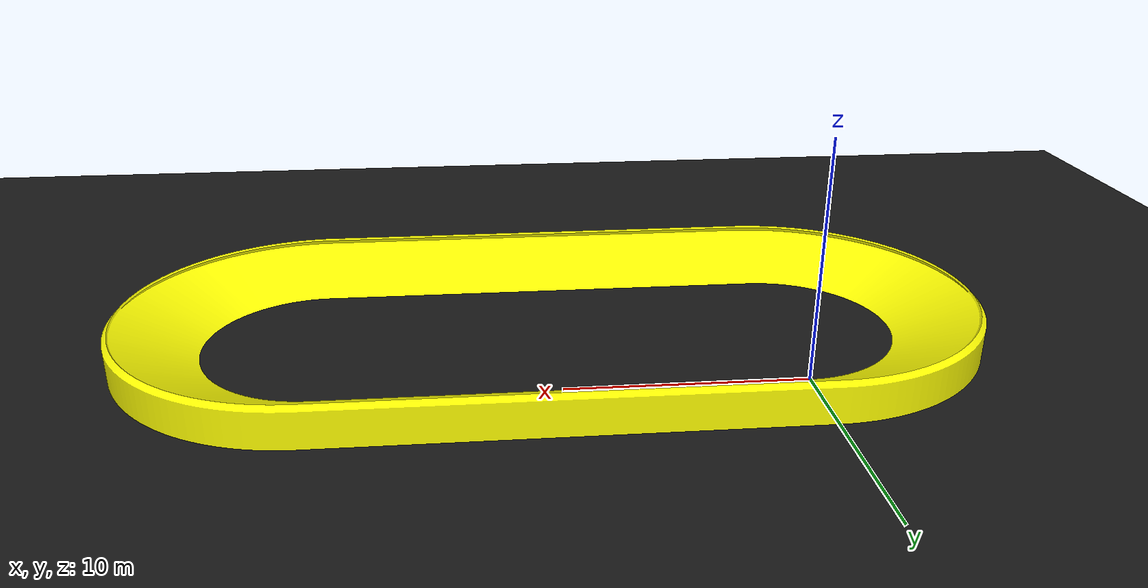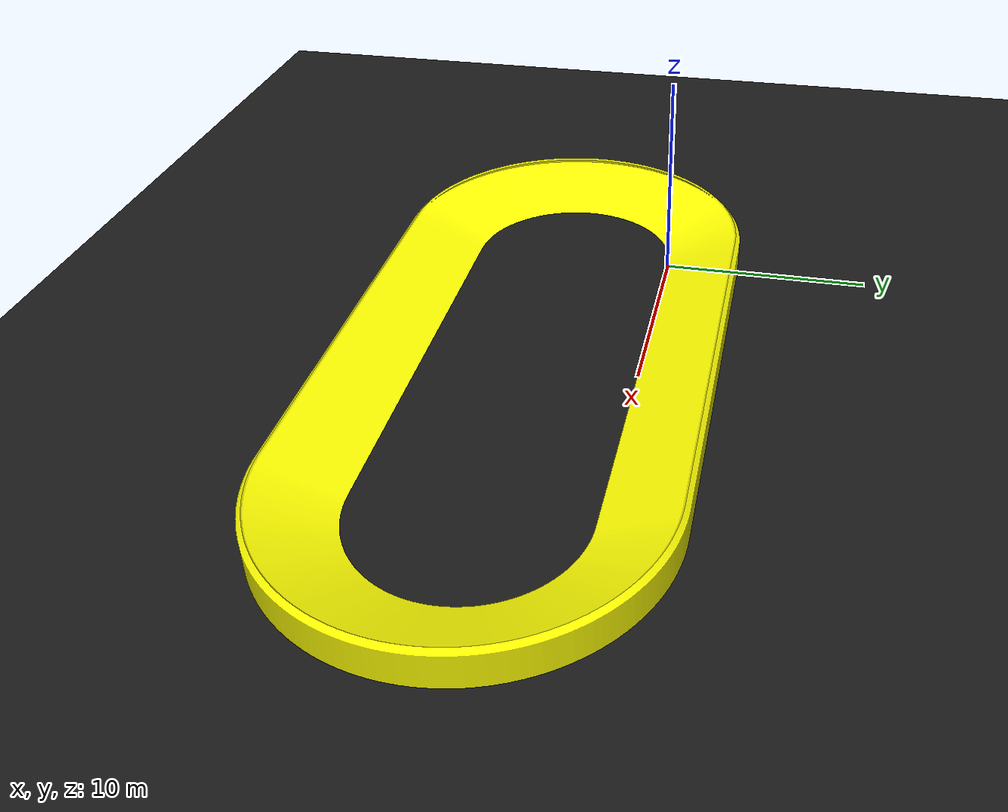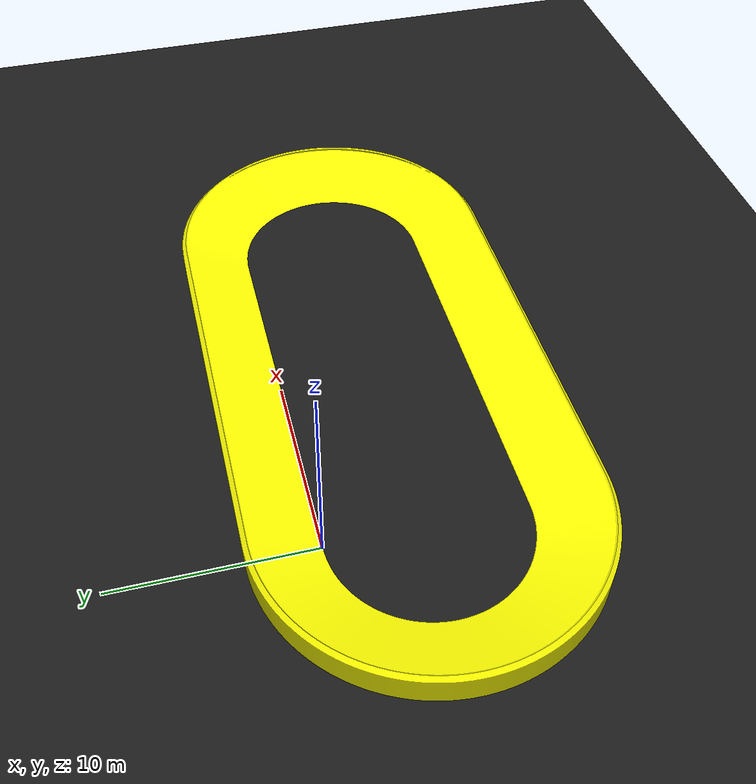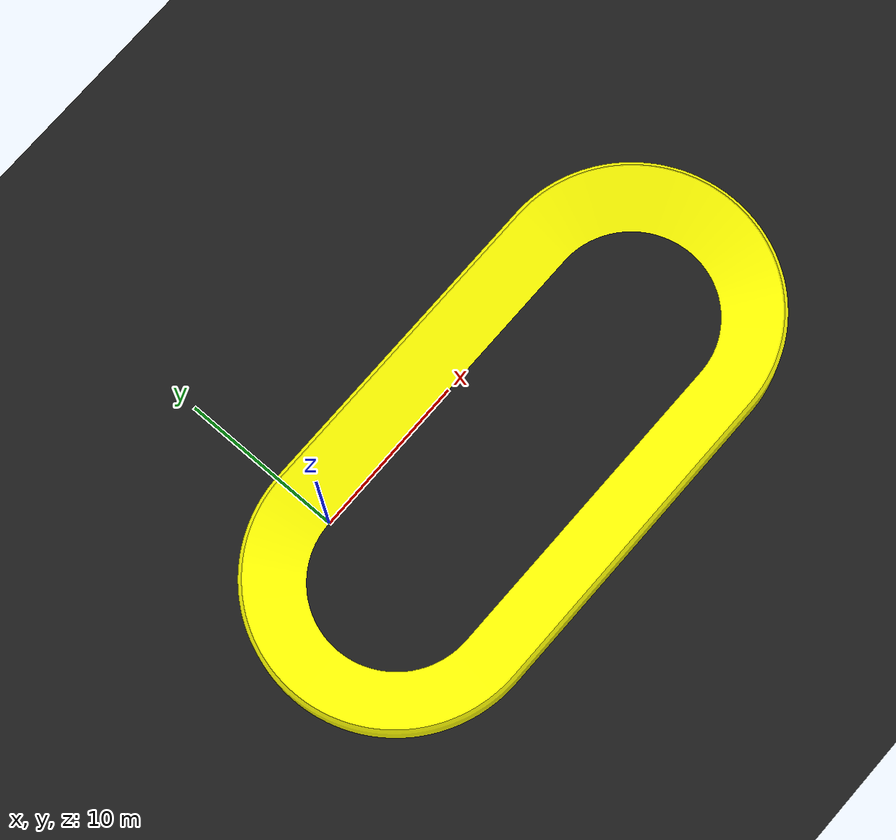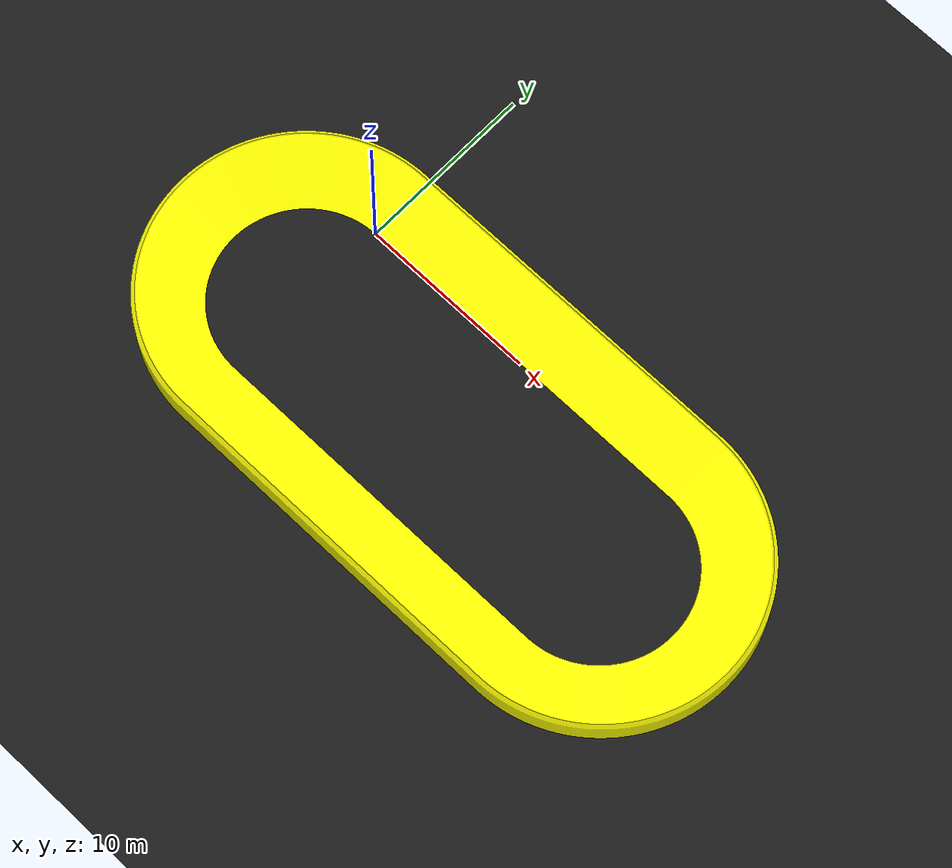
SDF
<?xml version="1.0"?>

<sdf version='1.9'>
  <world name='track'>

    <!-- PHYSICS -->
    <physics name="1ms" type="bullet">
        <max_step_size>0.001</max_step_size>
        <real_time_factor>1.0</real_time_factor>

        <bullet>
            <solver>
                <type>sequential_impulse</type>
                <iterations>100</iterations>
                <sor>1.5</sor>
                <split_impulse>true</split_impulse>
                <split_impulse_penetration_threshold>-0.001</split_impulse_penetration_threshold>
            </solver>
            <constraints>
                <cfm>0.0</cfm>
                <erp>0.99</erp>
                <contact_surface_layer>0.0</contact_surface_layer>
            </constraints>
        </bullet>

    </physics>

    <gravity>0 0 -9.8</gravity>
    <magnetic_field>6e-06 2.3e-05 -4.2e-05</magnetic_field>
    <atmosphere type='adiabatic'/>

    <!-- PLUGINS -->
    <plugin name='gz::sim::systems::Physics' filename='gz-sim-physics-system'/>
    <plugin name='gz::sim::systems::UserCommands' filename='gz-sim-user-commands-system'/>
    <plugin name='gz::sim::systems::SceneBroadcaster' filename='gz-sim-scene-broadcaster-system'/>

    <gui fullscreen='0'>
        <!-- 3D scene -->
        <plugin filename="MinimalScene" name="3D View">
            <gz-gui>
            <title>3D View</title>
            <property type="bool" key="showTitleBar">false</property>
            <property type="string" key="state">docked</property>
            </gz-gui>

            <engine>ogre2</engine>
            <scene>scene</scene>
            <ambient_light>0.4 0.4 0.4</ambient_light>
            <background_color>0.8 0.8 0.8</background_color>
            <camera_pose>-6 0 6 0 0.5 0</camera_pose>
        </plugin>

        <!-- Plugins that add functionality to the scene -->
        <plugin filename="EntityContextMenuPlugin" name="Entity context menu">
            <gz-gui>
            <property key="state" type="string">floating</property>
            <property key="width" type="double">5</property>
            <property key="height" type="double">5</property>
            <property key="showTitleBar" type="bool">false</property>
            </gz-gui>
        </plugin>
        <plugin filename="GzSceneManager" name="Scene Manager">
            <gz-gui>
            <property key="resizable" type="bool">false</property>
            <property key="width" type="double">5</property>
            <property key="height" type="double">5</property>
            <property key="state" type="string">floating</property>
            <property key="showTitleBar" type="bool">false</property>
            </gz-gui>
        </plugin>
        <plugin filename="InteractiveViewControl" name="Interactive view control">
            <gz-gui>
            <property key="resizable" type="bool">false</property>
            <property key="width" type="double">5</property>
            <property key="height" type="double">5</property>
            <property key="state" type="string">floating</property>
            <property key="showTitleBar" type="bool">false</property>
            </gz-gui>
        </plugin>
        <plugin filename="CameraTracking" name="Camera Tracking">
            <gz-gui>
            <property key="resizable" type="bool">false</property>
            <property key="width" type="double">5</property>
            <property key="height" type="double">5</property>
            <property key="state" type="string">floating</property>
            <property key="showTitleBar" type="bool">false</property>
            </gz-gui>
        </plugin>
        <plugin name='World control' filename='WorldControl'>
            <gz-gui>
                <title>World control</title>
                <property type='bool' key='showTitleBar'>0</property>
                <property type='bool' key='resizable'>0</property>
                <property type='double' key='height'>72</property>
                <property type='double' key='z'>1</property>
                <property type='string' key='state'>floating</property>
                <anchors target='3D View'>
                    <line own='left' target='left'/>
                    <line own='bottom' target='bottom'/>
                </anchors>
            </gz-gui>
            <play_pause>1</play_pause>
            <step>1</step>
            <start_paused>1</start_paused>
        </plugin>
        <plugin name='World stats' filename='WorldStats'>
            <gz-gui>
                <title>World stats</title>
                <property type='bool' key='showTitleBar'>0</property>
                <property type='bool' key='resizable'>0</property>
                <property type='double' key='height'>110</property>
                <property type='double' key='width'>290</property>
                <property type='double' key='z'>1</property>
                <property type='string' key='state'>floating</property>
                <anchors target='3D View'>
                    <line own='right' target='right'/>
                    <line own='bottom' target='bottom'/>
                </anchors>
            </gz-gui>
            <sim_time>1</sim_time>
            <real_time>1</real_time>
            <real_time_factor>1</real_time_factor>
            <iterations>1</iterations>
        </plugin>

        <plugin filename="VisualizeLidar" name="Visualize Lidar">
        </plugin>

        <plugin filename="ImageDisplay" name="Image Display">
        </plugin>

        <!-- Inspector -->
        <plugin filename="ComponentInspector" name="Component inspector">
            <ignition-gui>
            <property type="string" key="state">docked</property>
            </ignition-gui>
        </plugin>

        <!-- Entity tree -->
        <plugin filename="EntityTree" name="Entity tree">
            <ignition-gui>
            <property type="string" key="state">docked</property>
            </ignition-gui>
        </plugin>
    </gui>

    <!-- SENSORS -->

    <plugin
    filename="gz-sim-sensors-system"
    name="gz::sim::systems::Sensors">
    <render_engine>ogre2</render_engine>
    </plugin>

    <!-- AMBIENT -->

    <scene>
        <ambient>1 1 1 1</ambient>
        <background>0.8 0.8 0.8 1</background>
        <shadows>1</shadows>
    </scene>
    <light name='sun' type='directional'>
        <cast_shadows>1</cast_shadows>
        <pose>0 0 10 0 0 0</pose>
        <diffuse>0.8 0.8 0.8 1</diffuse>
        <specular>0.8 0.8 0.8 1</specular>
        <attenuation>
            <range>1000</range>
            <constant>0.9</constant>
            <linear>0.01</linear>
            <quadratic>0.001</quadratic>
        </attenuation>
        <direction>-0.5 0.1 -0.9</direction>
    </light>

    <model name='ground_plane'>
        <static>true</static>
        <link name='link'>
            <collision name='collision'>
                <geometry>
                    <plane>
                    <normal>0 0 1</normal>
                    <size>100 100</size>
                    </plane>
                </geometry>

                <surface>
                    <friction>
                        <dart/>
                    </friction>
                    <bounce/>
                    <contact/>
                </surface>
            </collision>

            <visual name='visual'>
                <geometry>
                    <plane>
                    <normal>0 0 1</normal>
                    <size>100 100</size>
                    </plane>
                </geometry>
                <material>
                    <ambient>0.1 0.1 0.1 1</ambient>
                    <diffuse>0.1 0.1 0.1 1</diffuse>
                    <specular>0.8 0.8 0.8 1</specular>
                </material>
            </visual>

            <pose>0 0 0 0 -0 0</pose>

            <inertial>
                <pose>0 0 0 0 -0 0</pose>
                <mass>1</mass>
                <inertia>
                    <ixx>1</ixx>
                    <ixy>0</ixy>
                    <ixz>0</ixz>
                    <iyy>1</iyy>
                    <iyz>0</iyz>
                    <izz>1</izz>
                </inertia>
            </inertial>

            <enable_wind>false</enable_wind>

        </link>

        <pose>0 0 0 0 -0 0</pose>

        <self_collide>false</self_collide>
    </model>

    <!-- TRACK -->
    <model name='indy_track'>
        <allow_auto_disable>true</allow_auto_disable>
        <static>true</static>
        <link name='track'>
            <collision name='track_collision'>
                <geometry>
                    <mesh>
                        <uri>/home/ubuntu/psd_ws/src/psd_gazebo_worlds/world/models/indy_track/meshes/pista_inclinata_lineare.stl</uri>
                        <scale>0.001 0.001 0.001</scale>
                    </mesh>
                </geometry>
                <surface>
                    <friction>
                        <ode>
                            <mu>1.0</mu>
                            <mu2>1.0</mu2>
                        </ode>
                        <bullet>
                            <friction>1.0</friction>
                            <friction2>1.0</friction2>
                        </bullet>
                    </friction>
                </surface>
            </collision>
            <visual name='track_visual'>
                <geometry>
                    <mesh>
                        <uri>/home/ubuntu/psd_ws/src/psd_gazebo_worlds/world/models/indy_track/meshes/pista_inclinata_lineare.stl</uri>
                        <scale>0.1 0.1 0.1</scale>
                    </mesh>
                </geometry>
                <material>
                    <ambient>1 1 0 1</ambient>
                    <diffuse>1 1 0 1</diffuse>
                    <specular>1 1 0 1</specular>
                </material>
            </visual>
            <pose>0.0 0.0 0.0 0 0 0</pose>
            <enable_wind>false</enable_wind>
        </link>
    </model>
  </world>
</sdf>
